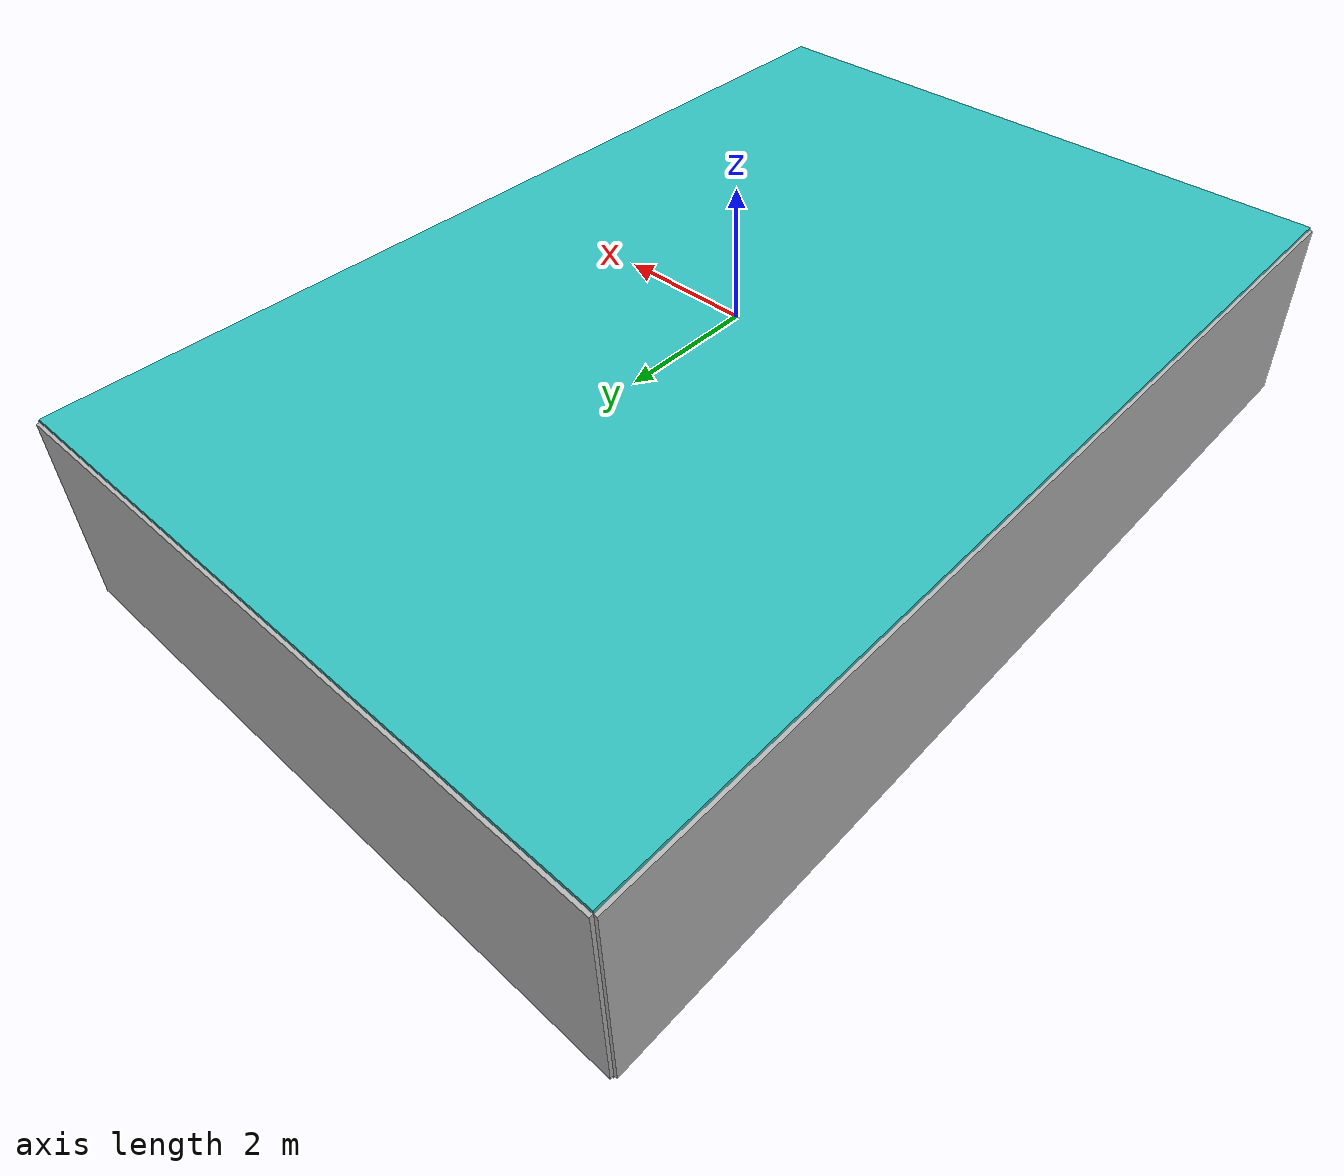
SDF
<?xml version="1.0" ?>

<sdf version="1.5">
  <world name="pool_tests">
    <physics name="default_physics" default="true" type="ode">
      <max_step_size>0.002</max_step_size>
      <real_time_factor>1</real_time_factor>
      <real_time_update_rate>500</real_time_update_rate>
      <ode>
        <solver>
          <type>quick</type>
          <iters>50</iters>
          <sor>0.5</sor>
        </solver>
      </ode>
    </physics>
    <scene>
      <ambient>0.01 0.01 0.01 1.0</ambient>
      <sky>
        <clouds>
          <speed>12</speed>
        </clouds>
      </sky>
    </scene>

    <!-- Global light source -->
    <include>
      <uri>model://sun</uri>
    </include>

    <!-- Bounding box for pool -->
    <include>
      <uri>model://pool_1</uri>
      <pose>0 0 0 0 0 0</pose>
    </include>

    <include>
        <uri>model://gate</uri>
        <pose>0.0 3.65 -2.47 0 0 1.57</pose>
    </include>

    <light type="point" name="point_light_1">
        <pose>0 -6.0 1.0 0 0 0</pose>
        <direction>0 0 -1</direction>
        <diffuse>0.5 0.5 0.5 1</diffuse>
        <specular>.1 .1 .1 1</specular>
        <attenuation>
            <range>20</range>
            <linear>0.01</linear>
            <constant>0.50</constant>
            <quadratic>0.00</quadratic>
        </attenuation>
        <cast_shadows>false</cast_shadows>
    </light>

    <light type="point" name="point_light_2">
        <pose>0 6.0 1.0 0 0 0</pose>
        <direction>0 0 -1</direction>
        <diffuse>0.5 0.5 0.5 1</diffuse>
        <specular>.1 .1 .1 1</specular>
        <attenuation>
            <range>20</range>
            <linear>0.01</linear>
            <constant>0.50</constant>
            <quadratic>0.00</quadratic>
        </attenuation>
        <cast_shadows>false</cast_shadows>
    </light>
  </world>
</sdf>

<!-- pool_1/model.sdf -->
<sdf version="1.5">
    <model name="pool_1">
        <static>true</static>
        <link name="pool_link">

            <visual name="floor">
                <cast_shadows>false</cast_shadows>
                <pose>0 0 -3.0 0 0 0</pose>
                <geometry>
                    <box>
                        <size>10 15 0.1</size>
                    </box>
                </geometry>
                <material>
                    <script>
                        <uri>file://media/materials/scripts/pool.material</uri>
                        <name>PoolWall</name>
                    </script>
                </material>
            </visual>
            <collision name="floor">
                <pose>0 0 -3.0 0 0 0</pose>
                <geometry>
                    <box>
                        <size>10 15 0.1</size>
                    </box>
                </geometry>
            </collision>
            <visual name="surface">
                <cast_shadows>false</cast_shadows>
                <pose>0 0 0 0 0 0</pose>
                <geometry>
                    <box>
                        <size>10 15 0.1</size>
                    </box>
                </geometry>

                <material>
                    <script>
                        <uri>file://media/materials/scripts/water.material</uri>
                        <name>UUVSimulator/StaticTurquoiseWater</name>
                    </script>
                </material>
            </visual>
            <collision name="surface">
                <pose>0 0 0 0 0 0</pose>
                <geometry>
                    <box>
                        <size>10 15 0.1</size>
                    </box>
                </geometry>
            </collision>

            <visual name="north">
                <cast_shadows>false</cast_shadows>
                <pose>5 0 -1.50 0 0 0</pose>
                <geometry>
                    <box>
                        <size>0.1 15 3.0</size>
                    </box>
                </geometry>
                <material>
                    <script>
                        <uri>file://media/materials/scripts/pool.material</uri>
                        <name>PoolWall</name>
                    </script>
                </material>
            </visual>

            <collision name="north">
                <pose>5 0 -1.50 0 0 0</pose>
                <geometry>
                    <box>
                        <size>0.1 15 3.0</size>
                    </box>
                </geometry>
            </collision>

            <visual name="south">
                <cast_shadows>false</cast_shadows>
                <pose>-5.0 0 -1.50 0 0 0</pose>
                <geometry>
                    <box>
                        <size>0.1 15 3.0</size>
                    </box>
                </geometry>
                <material>
                    <script>
                        <uri>file://media/materials/scripts/pool.material</uri>
                        <name>PoolWall</name>
                    </script>
                </material>
            </visual>

            <collision name="south">
                <pose>-5.0 0 -1.50 0 0 0</pose>
                <geometry>
                    <box>
                        <size>0.1 15 3.0</size>
                    </box>
                </geometry>
            </collision>

            <visual name="east">
                <cast_shadows>false</cast_shadows>
                <pose>0 7.5 -1.50 0 0 0</pose>
                <geometry>
                    <box>
                        <size>10 0.1 3.0</size>
                    </box>
                </geometry>
                <material>
                    <script>
                        <uri>file://media/materials/scripts/pool.material</uri>
                        <name>PoolWall</name>
                    </script>
                </material>
            </visual>

            <collision name="east">
                <pose>0 7.5 -1.50 0 0 0</pose>
                <geometry>
                    <box>
                        <size>10 0.1 3.0</size>
                    </box>
                </geometry>
            </collision>

            <visual name="west">
                <cast_shadows>false</cast_shadows>
                <pose>0 -7.5 -1.50 0 0 0</pose>
                <geometry>
                    <box>
                        <size>10 0.1 3.0</size>
                    </box>
                </geometry>
                <material>
                    <script>
                        <uri>file://media/materials/scripts/pool.material</uri>
                        <name>PoolWall</name>
                    </script>
                </material>
            </visual>

            <collision name="west">
                <pose>0 -7.5 -1.50 0 0 0</pose>
                <geometry>
                    <box>
                        <size>10 0.1 3.0</size>
                    </box>
                </geometry>
            </collision>

        </link>
    </model>

</sdf>

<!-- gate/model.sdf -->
<sdf version="1.7">
    <model name="gate">
        <static>true</static>
        <link name="base">
            <inertial>
                <mass>1.0</mass>
                <inertia>
                    <ixx>0.010</ixx>
                    <ixy>0.0</ixy>
                    <ixz>0.0</ixz>
                    <iyy>0.010</iyy>
                    <iyz>0.0</iyz>
                    <izz>0.010</izz>
                </inertia>
            </inertial>

            <visual name="visual">
                <geometry>
                    <mesh><uri>model://gate/gate.dae</uri></mesh>
                </geometry>
            </visual>

            <collision name="collision">
                 <geometry>
                    <mesh><uri>model://gate/gate.dae</uri></mesh>
                </geometry>
            </collision>
        </link>
    </model>
</sdf>
